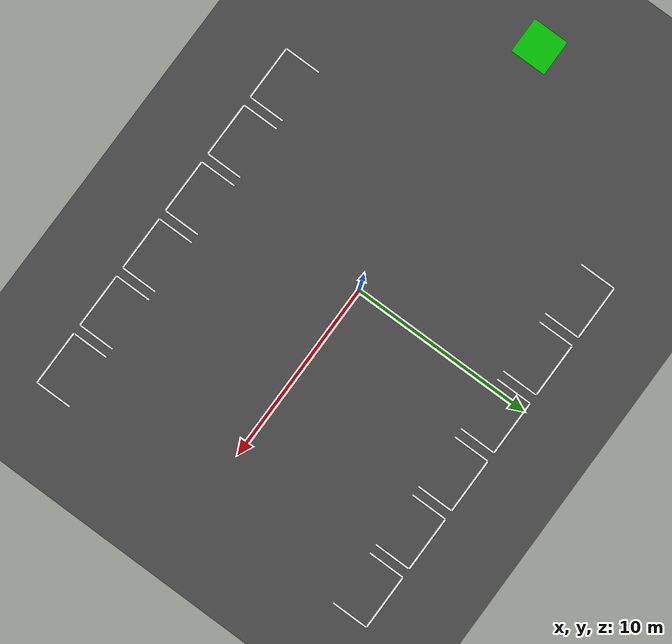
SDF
<?xml version="1.0" ?>
<sdf version="1.6">
  <world name="parking_lot_a">

    <!-- Sun / lighting -->
    <include>
      <uri>model://sun</uri>
    </include>

    <!-- Physics (fairly fast, stable) -->
    <physics type="ode">
      <real_time_update_rate>1000</real_time_update_rate>
      <max_step_size>0.001</max_step_size>
    </physics>

    <!-- Ground: big asphalt square -->
    <model name="ground_plane">
      <static>true</static>
      <link name="link">
        <collision name="collision">
          <geometry>
            <plane>
              <normal>0 0 1</normal>
              <size>40 40</size>
            </plane>
          </geometry>
        </collision>
        <visual name="visual">
          <geometry>
            <plane>
              <normal>0 0 1</normal>
              <size>40 40</size>
            </plane>
          </geometry>
          <material>
            <ambient>0.3 0.3 0.3 1</ambient>   <!-- asphalt gray -->
            <diffuse>0.3 0.3 0.3 1</diffuse>
          </material>
        </visual>
      </link>
    </model>

    <!-- Entrance marker (green square) at (-15,0) -->
    <model name="entrance_marker">
      <static>true</static>
      <link name="link">
        <visual name="entrance_visual">
          <pose>-15 0 0 0 0 0</pose>
          <geometry>
            <box>
              <size>2 2 0.01</size>
            </box>
          </geometry>
          <material>
            <diffuse>0 0.8 0 1</diffuse>
          </material>
        </visual>
      </link>
    </model>

    <!-- Parking bays: front-in, two rows (A: y=+9, B: y=-9), lane in the middle -->

    <model name="parking_bays">
      <static>true</static>
      <link name="link">

        <!-- ---- Top row (A1..A6), front-in from center lane toward +Y ---- -->
        <!-- Each bay is a U-shaped white outline (3 thin rectangles) -->

        <!-- A1 centered near x=-6, y=+9 -->
        <visual name="A1_back">
          <pose>-6 10 0 0 0 0</pose>
          <geometry><box><size>3 0.1 0.01</size></box></geometry>
          <material><diffuse>1 1 1 1</diffuse></material>
        </visual>
        <visual name="A1_left">
          <pose>-7.5 9 0 0 0 0</pose>
          <geometry><box><size>0.1 2 0.01</size></box></geometry>
          <material><diffuse>1 1 1 1</diffuse></material>
        </visual>
        <visual name="A1_right">
          <pose>-4.5 9 0 0 0 0</pose>
          <geometry><box><size>0.1 2 0.01</size></box></geometry>
          <material><diffuse>1 1 1 1</diffuse></material>
        </visual>

        <visual name="A2_back">
          <pose>-2.5 10 0 0 0 0</pose>
          <geometry><box><size>3 0.1 0.01</size></box></geometry>
          <material><diffuse>1 1 1 1</diffuse></material>
        </visual>
        <visual name="A2_left">
          <pose>-4 9 0 0 0 0</pose>
          <geometry><box><size>0.1 2 0.01</size></box></geometry>
          <material><diffuse>1 1 1 1</diffuse></material>
        </visual>
        <visual name="A2_right">
          <pose>-1 9 0 0 0 0</pose>
          <geometry><box><size>0.1 2 0.01</size></box></geometry>
          <material><diffuse>1 1 1 1</diffuse></material>
        </visual>

        <visual name="A3_back">
          <pose>1 10 0 0 0 0</pose>
          <geometry><box><size>3 0.1 0.01</size></box></geometry>
          <material><diffuse>1 1 1 1</diffuse></material>
        </visual>
        <visual name="A3_left">
          <pose>-0.5 9 0 0 0 0</pose>
          <geometry><box><size>0.1 2 0.01</size></box></geometry>
          <material><diffuse>1 1 1 1</diffuse></material>
        </visual>
        <visual name="A3_right">
          <pose>2.5 9 0 0 0 0</pose>
          <geometry><box><size>0.1 2 0.01</size></box></geometry>
          <material><diffuse>1 1 1 1</diffuse></material>
        </visual>

        <visual name="A4_back">
          <pose>4.5 10 0 0 0 0</pose>
          <geometry><box><size>3 0.1 0.01</size></box></geometry>
          <material><diffuse>1 1 1 1</diffuse></material>
        </visual>
        <visual name="A4_left">
          <pose>3 9 0 0 0 0</pose>
          <geometry><box><size>0.1 2 0.01</size></box></geometry>
          <material><diffuse>1 1 1 1</diffuse></material>
        </visual>
        <visual name="A4_right">
          <pose>6 9 0 0 0 0</pose>
          <geometry><box><size>0.1 2 0.01</size></box></geometry>
          <material><diffuse>1 1 1 1</diffuse></material>
        </visual>

        <visual name="A5_back">
          <pose>8 10 0 0 0 0</pose>
          <geometry><box><size>3 0.1 0.01</size></box></geometry>
          <material><diffuse>1 1 1 1</diffuse></material>
        </visual>
        <visual name="A5_left">
          <pose>6.5 9 0 0 0 0</pose>
          <geometry><box><size>0.1 2 0.01</size></box></geometry>
          <material><diffuse>1 1 1 1</diffuse></material>
        </visual>
        <visual name="A5_right">
          <pose>9.5 9 0 0 0 0</pose>
          <geometry><box><size>0.1 2 0.01</size></box></geometry>
          <material><diffuse>1 1 1 1</diffuse></material>
        </visual>

        <visual name="A6_back">
          <pose>11.5 10 0 0 0 0</pose>
          <geometry><box><size>3 0.1 0.01</size></box></geometry>
          <material><diffuse>1 1 1 1</diffuse></material>
        </visual>
        <visual name="A6_left">
          <pose>10 9 0 0 0 0</pose>
          <geometry><box><size>0.1 2 0.01</size></box></geometry>
          <material><diffuse>1 1 1 1</diffuse></material>
        </visual>
        <visual name="A6_right">
          <pose>13 9 0 0 0 0</pose>
          <geometry><box><size>0.1 2 0.01</size></box></geometry>
          <material><diffuse>1 1 1 1</diffuse></material>
        </visual>

        <!-- ---- Bottom row (B1..B6), front-in from center lane toward -Y ---- -->

        <visual name="B1_back">
          <pose>-6 -10 0 0 0 0</pose>
          <geometry><box><size>3 0.1 0.01</size></box></geometry>
          <material><diffuse>1 1 1 1</diffuse></material>
        </visual>
        <visual name="B1_left">
          <pose>-7.5 -9 0 0 0 0</pose>
          <geometry><box><size>0.1 2 0.01</size></box></geometry>
          <material><diffuse>1 1 1 1</diffuse></material>
        </visual>
        <visual name="B1_right">
          <pose>-4.5 -9 0 0 0 0</pose>
          <geometry><box><size>0.1 2 0.01</size></box></geometry>
          <material><diffuse>1 1 1 1</diffuse></material>
        </visual>

        <visual name="B2_back">
          <pose>-2.5 -10 0 0 0 0</pose>
          <geometry><box><size>3 0.1 0.01</size></box></geometry>
          <material><diffuse>1 1 1 1</diffuse></material>
        </visual>
        <visual name="B2_left">
          <pose>-4 -9 0 0 0 0</pose>
          <geometry><box><size>0.1 2 0.01</size></box></geometry>
          <material><diffuse>1 1 1 1</diffuse></material>
        </visual>
        <visual name="B2_right">
          <pose>-1 -9 0 0 0 0</pose>
          <geometry><box><size>0.1 2 0.01</size></box></geometry>
          <material><diffuse>1 1 1 1</diffuse></material>
        </visual>

        <visual name="B3_back">
          <pose>1 -10 0 0 0 0</pose>
          <geometry><box><size>3 0.1 0.01</size></box></geometry>
          <material><diffuse>1 1 1 1</diffuse></material>
        </visual>
        <visual name="B3_left">
          <pose>-0.5 -9 0 0 0 0</pose>
          <geometry><box><size>0.1 2 0.01</size></box></geometry>
          <material><diffuse>1 1 1 1</diffuse></material>
        </visual>
        <visual name="B3_right">
          <pose>2.5 -9 0 0 0 0</pose>
          <geometry><box><size>0.1 2 0.01</size></box></geometry>
          <material><diffuse>1 1 1 1</diffuse></material>
        </visual>

        <visual name="B4_back">
          <pose>4.5 -10 0 0 0 0</pose>
          <geometry><box><size>3 0.1 0.01</size></box></geometry>
          <material><diffuse>1 1 1 1</diffuse></material>
        </visual>
        <visual name="B4_left">
          <pose>3 -9 0 0 0 0</pose>
          <geometry><box><size>0.1 2 0.01</size></box></geometry>
          <material><diffuse>1 1 1 1</diffuse></material>
        </visual>
        <visual name="B4_right">
          <pose>6 -9 0 0 0 0</pose>
          <geometry><box><size>0.1 2 0.01</size></box></geometry>
          <material><diffuse>1 1 1 1</diffuse></material>
        </visual>

        <visual name="B5_back">
          <pose>8 -10 0 0 0 0</pose>
          <geometry><box><size>3 0.1 0.01</size></box></geometry>
          <material><diffuse>1 1 1 1</diffuse></material>
        </visual>
        <visual name="B5_left">
          <pose>6.5 -9 0 0 0 0</pose>
          <geometry><box><size>0.1 2 0.01</size></box></geometry>
          <material><diffuse>1 1 1 1</diffuse></material>
        </visual>
        <visual name="B5_right">
          <pose>9.5 -9 0 0 0 0</pose>
          <geometry><box><size>0.1 2 0.01</size></box></geometry>
          <material><diffuse>1 1 1 1</diffuse></material>
        </visual>

        <visual name="B6_back">
          <pose>11.5 -10 0 0 0 0</pose>
          <geometry><box><size>3 0.1 0.01</size></box></geometry>
          <material><diffuse>1 1 1 1</diffuse></material>
        </visual>
        <visual name="B6_left">
          <pose>10 -9 0 0 0 0</pose>
          <geometry><box><size>0.1 2 0.01</size></box></geometry>
          <material><diffuse>1 1 1 1</diffuse></material>
        </visual>
        <visual name="B6_right">
          <pose>13 -9 0 0 0 0</pose>
          <geometry><box><size>0.1 2 0.01</size></box></geometry>
          <material><diffuse>1 1 1 1</diffuse></material>
        </visual>

      </link>
    </model>

  </world>
</sdf>
